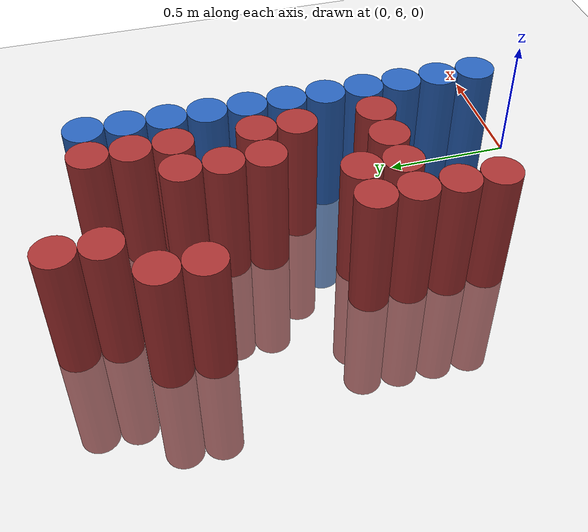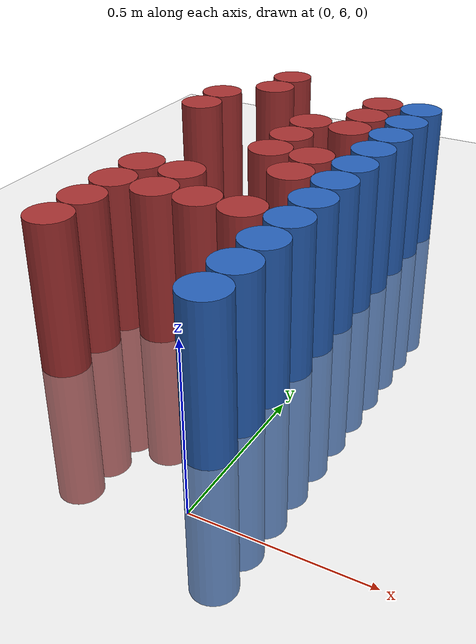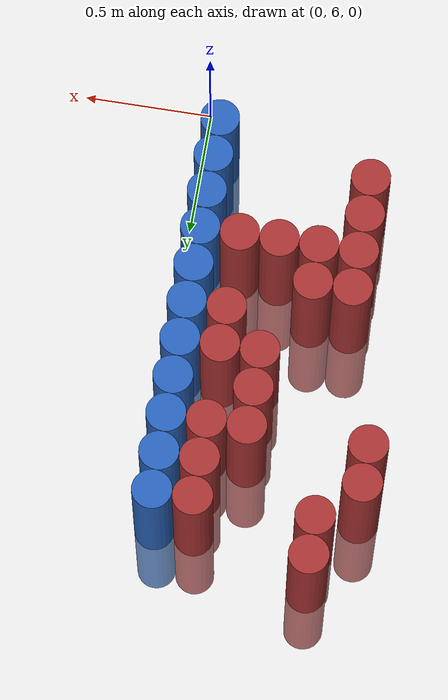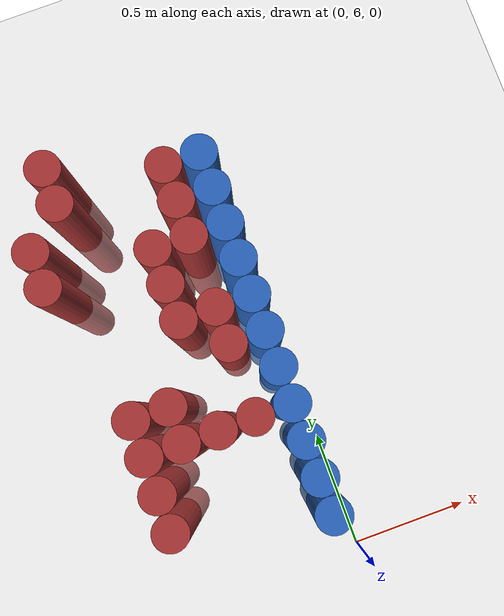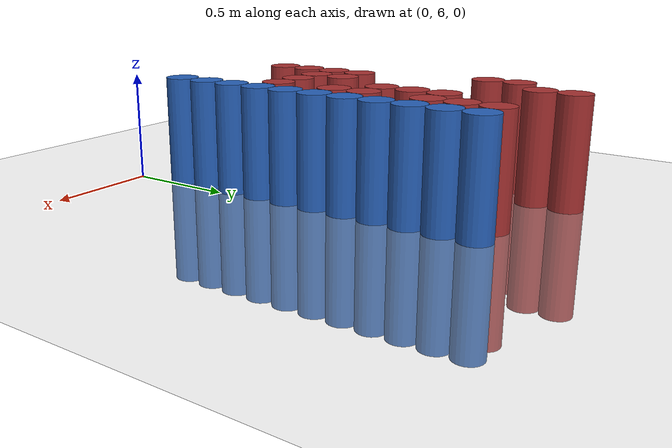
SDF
<sdf version="1.6">
 <world name="default">
  <model name="ground_plane">
   <static>1</static>
   <link name="link">
    <collision name="collision">
     <geometry><plane><normal>0 0 1</normal><size>100 100</size></plane></geometry>
     <surface><friction><ode><mu>100</mu><mu2>50</mu2></ode></friction></surface>
    </collision>
    <visual name="visual">
     <cast_shadows>0</cast_shadows>
     <geometry><plane><normal>0 0 1</normal><size>100 100</size></plane></geometry>
     <material>
      <script><uri>file://media/materials/scripts/gazebo.material</uri><name>Gazebo/Grey</name></script>
     </material>
    </visual>
   </link>
  </model>
  <model name="unit_cylinder_279">
   <static>1</static>
   <pose>-0.825000 7.425000 0.000000 0.000000 0.000000 0.000000</pose>
   <link name="link">
    <inertial>
     <mass>1</mass>
     <inertia><ixx>0.145833</ixx><ixy>0</ixy><ixz>0</ixz><iyy>0.145833</iyy><iyz>0</iyz><izz>0.125</izz></inertia>
    </inertial>
    <collision name="collision">
     <geometry><cylinder><radius>0.075000</radius><length>1</length></cylinder></geometry>
    </collision>
    <visual name="visual">
     <geometry><cylinder><radius>0.075000</radius><length>1</length></cylinder></geometry>
     <material>
      <ambient>0.648000 0.192000 0.192000 1</ambient>
      <diffuse>0.648000 0.192000 0.192000 1</diffuse>
     </material>
     <material>
      <script><name>Gazebo/Grey</name><uri>file://media/materials/scripts/gazebo.material</uri></script>
     </material>
    </visual>
    <sensor name="sensor_contact" type="contact"><contact><collision>collision</collision></contact></sensor>
   </link>
   <plugin filename="gz-sim-touchplugin-system" name="gz::sim::systems::TouchPlugin">
    <target>robot</target>
    <namespace>robot</namespace>
    <time>0.001</time>
    <enabled>true</enabled>
   </plugin>
  </model>
  <model name="unit_cylinder_280">
   <static>1</static>
   <pose>-0.825000 7.575000 0.000000 0.000000 0.000000 0.000000</pose>
   <link name="link">
    <inertial>
     <mass>1</mass>
     <inertia><ixx>0.145833</ixx><ixy>0</ixy><ixz>0</ixz><iyy>0.145833</iyy><iyz>0</iyz><izz>0.125</izz></inertia>
    </inertial>
    <collision name="collision">
     <geometry><cylinder><radius>0.075000</radius><length>1</length></cylinder></geometry>
    </collision>
    <visual name="visual">
     <geometry><cylinder><radius>0.075000</radius><length>1</length></cylinder></geometry>
     <material>
      <ambient>0.648000 0.192000 0.192000 1</ambient>
      <diffuse>0.648000 0.192000 0.192000 1</diffuse>
     </material>
     <material>
      <script><name>Gazebo/Grey</name><uri>file://media/materials/scripts/gazebo.material</uri></script>
     </material>
    </visual>
    <sensor name="sensor_contact" type="contact"><contact><collision>collision</collision></contact></sensor>
   </link>
   <plugin filename="gz-sim-touchplugin-system" name="gz::sim::systems::TouchPlugin">
    <target>robot</target>
    <namespace>robot</namespace>
    <time>0.001</time>
    <enabled>true</enabled>
   </plugin>
  </model>
  <model name="unit_cylinder_283">
   <static>1</static>
   <pose>-0.675000 6.375000 0.000000 0.000000 0.000000 0.000000</pose>
   <link name="link">
    <inertial>
     <mass>1</mass>
     <inertia><ixx>0.145833</ixx><ixy>0</ixy><ixz>0</ixz><iyy>0.145833</iyy><iyz>0</iyz><izz>0.125</izz></inertia>
    </inertial>
    <collision name="collision">
     <geometry><cylinder><radius>0.075000</radius><length>1</length></cylinder></geometry>
    </collision>
    <visual name="visual">
     <geometry><cylinder><radius>0.075000</radius><length>1</length></cylinder></geometry>
     <material>
      <ambient>0.648000 0.192000 0.192000 1</ambient>
      <diffuse>0.648000 0.192000 0.192000 1</diffuse>
     </material>
     <material>
      <script><name>Gazebo/Grey</name><uri>file://media/materials/scripts/gazebo.material</uri></script>
     </material>
    </visual>
    <sensor name="sensor_contact" type="contact"><contact><collision>collision</collision></contact></sensor>
   </link>
   <plugin filename="gz-sim-touchplugin-system" name="gz::sim::systems::TouchPlugin">
    <target>robot</target>
    <namespace>robot</namespace>
    <time>0.001</time>
    <enabled>true</enabled>
   </plugin>
  </model>
  <model name="unit_cylinder_284">
   <static>1</static>
   <pose>-0.675000 6.525000 0.000000 0.000000 0.000000 0.000000</pose>
   <link name="link">
    <inertial>
     <mass>1</mass>
     <inertia><ixx>0.145833</ixx><ixy>0</ixy><ixz>0</ixz><iyy>0.145833</iyy><iyz>0</iyz><izz>0.125</izz></inertia>
    </inertial>
    <collision name="collision">
     <geometry><cylinder><radius>0.075000</radius><length>1</length></cylinder></geometry>
    </collision>
    <visual name="visual">
     <geometry><cylinder><radius>0.075000</radius><length>1</length></cylinder></geometry>
     <material>
      <ambient>0.648000 0.192000 0.192000 1</ambient>
      <diffuse>0.648000 0.192000 0.192000 1</diffuse>
     </material>
     <material>
      <script><name>Gazebo/Grey</name><uri>file://media/materials/scripts/gazebo.material</uri></script>
     </material>
    </visual>
    <sensor name="sensor_contact" type="contact"><contact><collision>collision</collision></contact></sensor>
   </link>
   <plugin filename="gz-sim-touchplugin-system" name="gz::sim::systems::TouchPlugin">
    <target>robot</target>
    <namespace>robot</namespace>
    <time>0.001</time>
    <enabled>true</enabled>
   </plugin>
  </model>
  <model name="unit_cylinder_285">
   <static>1</static>
   <pose>-0.675000 6.675000 0.000000 0.000000 0.000000 0.000000</pose>
   <link name="link">
    <inertial>
     <mass>1</mass>
     <inertia><ixx>0.145833</ixx><ixy>0</ixy><ixz>0</ixz><iyy>0.145833</iyy><iyz>0</iyz><izz>0.125</izz></inertia>
    </inertial>
    <collision name="collision">
     <geometry><cylinder><radius>0.075000</radius><length>1</length></cylinder></geometry>
    </collision>
    <visual name="visual">
     <geometry><cylinder><radius>0.075000</radius><length>1</length></cylinder></geometry>
     <material>
      <ambient>0.648000 0.192000 0.192000 1</ambient>
      <diffuse>0.648000 0.192000 0.192000 1</diffuse>
     </material>
     <material>
      <script><name>Gazebo/Grey</name><uri>file://media/materials/scripts/gazebo.material</uri></script>
     </material>
    </visual>
    <sensor name="sensor_contact" type="contact"><contact><collision>collision</collision></contact></sensor>
   </link>
   <plugin filename="gz-sim-touchplugin-system" name="gz::sim::systems::TouchPlugin">
    <target>robot</target>
    <namespace>robot</namespace>
    <time>0.001</time>
    <enabled>true</enabled>
   </plugin>
  </model>
  <model name="unit_cylinder_286">
   <static>1</static>
   <pose>-0.675000 6.825000 0.000000 0.000000 0.000000 0.000000</pose>
   <link name="link">
    <inertial>
     <mass>1</mass>
     <inertia><ixx>0.145833</ixx><ixy>0</ixy><ixz>0</ixz><iyy>0.145833</iyy><iyz>0</iyz><izz>0.125</izz></inertia>
    </inertial>
    <collision name="collision">
     <geometry><cylinder><radius>0.075000</radius><length>1</length></cylinder></geometry>
    </collision>
    <visual name="visual">
     <geometry><cylinder><radius>0.075000</radius><length>1</length></cylinder></geometry>
     <material>
      <ambient>0.648000 0.192000 0.192000 1</ambient>
      <diffuse>0.648000 0.192000 0.192000 1</diffuse>
     </material>
     <material>
      <script><name>Gazebo/Grey</name><uri>file://media/materials/scripts/gazebo.material</uri></script>
     </material>
    </visual>
    <sensor name="sensor_contact" type="contact"><contact><collision>collision</collision></contact></sensor>
   </link>
   <plugin filename="gz-sim-touchplugin-system" name="gz::sim::systems::TouchPlugin">
    <target>robot</target>
    <namespace>robot</namespace>
    <time>0.001</time>
    <enabled>true</enabled>
   </plugin>
  </model>
  <model name="unit_cylinder_287">
   <static>1</static>
   <pose>-0.675000 7.725000 0.000000 0.000000 0.000000 0.000000</pose>
   <link name="link">
    <inertial>
     <mass>1</mass>
     <inertia><ixx>0.145833</ixx><ixy>0</ixy><ixz>0</ixz><iyy>0.145833</iyy><iyz>0</iyz><izz>0.125</izz></inertia>
    </inertial>
    <collision name="collision">
     <geometry><cylinder><radius>0.075000</radius><length>1</length></cylinder></geometry>
    </collision>
    <visual name="visual">
     <geometry><cylinder><radius>0.075000</radius><length>1</length></cylinder></geometry>
     <material>
      <ambient>0.648000 0.192000 0.192000 1</ambient>
      <diffuse>0.648000 0.192000 0.192000 1</diffuse>
     </material>
     <material>
      <script><name>Gazebo/Grey</name><uri>file://media/materials/scripts/gazebo.material</uri></script>
     </material>
    </visual>
    <sensor name="sensor_contact" type="contact"><contact><collision>collision</collision></contact></sensor>
   </link>
   <plugin filename="gz-sim-touchplugin-system" name="gz::sim::systems::TouchPlugin">
    <target>robot</target>
    <namespace>robot</namespace>
    <time>0.001</time>
    <enabled>true</enabled>
   </plugin>
  </model>
  <model name="unit_cylinder_288">
   <static>1</static>
   <pose>-0.675000 7.875000 0.000000 0.000000 0.000000 0.000000</pose>
   <link name="link">
    <inertial>
     <mass>1</mass>
     <inertia><ixx>0.145833</ixx><ixy>0</ixy><ixz>0</ixz><iyy>0.145833</iyy><iyz>0</iyz><izz>0.125</izz></inertia>
    </inertial>
    <collision name="collision">
     <geometry><cylinder><radius>0.075000</radius><length>1</length></cylinder></geometry>
    </collision>
    <visual name="visual">
     <geometry><cylinder><radius>0.075000</radius><length>1</length></cylinder></geometry>
     <material>
      <ambient>0.648000 0.192000 0.192000 1</ambient>
      <diffuse>0.648000 0.192000 0.192000 1</diffuse>
     </material>
     <material>
      <script><name>Gazebo/Grey</name><uri>file://media/materials/scripts/gazebo.material</uri></script>
     </material>
    </visual>
    <sensor name="sensor_contact" type="contact"><contact><collision>collision</collision></contact></sensor>
   </link>
   <plugin filename="gz-sim-touchplugin-system" name="gz::sim::systems::TouchPlugin">
    <target>robot</target>
    <namespace>robot</namespace>
    <time>0.001</time>
    <enabled>true</enabled>
   </plugin>
  </model>
  <model name="unit_cylinder_295">
   <static>1</static>
   <pose>-0.525000 6.675000 0.000000 0.000000 0.000000 0.000000</pose>
   <link name="link">
    <inertial>
     <mass>1</mass>
     <inertia><ixx>0.145833</ixx><ixy>0</ixy><ixz>0</ixz><iyy>0.145833</iyy><iyz>0</iyz><izz>0.125</izz></inertia>
    </inertial>
    <collision name="collision">
     <geometry><cylinder><radius>0.075000</radius><length>1</length></cylinder></geometry>
    </collision>
    <visual name="visual">
     <geometry><cylinder><radius>0.075000</radius><length>1</length></cylinder></geometry>
     <material>
      <ambient>0.648000 0.192000 0.192000 1</ambient>
      <diffuse>0.648000 0.192000 0.192000 1</diffuse>
     </material>
     <material>
      <script><name>Gazebo/Grey</name><uri>file://media/materials/scripts/gazebo.material</uri></script>
     </material>
    </visual>
    <sensor name="sensor_contact" type="contact"><contact><collision>collision</collision></contact></sensor>
   </link>
   <plugin filename="gz-sim-touchplugin-system" name="gz::sim::systems::TouchPlugin">
    <target>robot</target>
    <namespace>robot</namespace>
    <time>0.001</time>
    <enabled>true</enabled>
   </plugin>
  </model>
  <model name="unit_cylinder_296">
   <static>1</static>
   <pose>-0.525000 6.825000 0.000000 0.000000 0.000000 0.000000</pose>
   <link name="link">
    <inertial>
     <mass>1</mass>
     <inertia><ixx>0.145833</ixx><ixy>0</ixy><ixz>0</ixz><iyy>0.145833</iyy><iyz>0</iyz><izz>0.125</izz></inertia>
    </inertial>
    <collision name="collision">
     <geometry><cylinder><radius>0.075000</radius><length>1</length></cylinder></geometry>
    </collision>
    <visual name="visual">
     <geometry><cylinder><radius>0.075000</radius><length>1</length></cylinder></geometry>
     <material>
      <ambient>0.648000 0.192000 0.192000 1</ambient>
      <diffuse>0.648000 0.192000 0.192000 1</diffuse>
     </material>
     <material>
      <script><name>Gazebo/Grey</name><uri>file://media/materials/scripts/gazebo.material</uri></script>
     </material>
    </visual>
    <sensor name="sensor_contact" type="contact"><contact><collision>collision</collision></contact></sensor>
   </link>
   <plugin filename="gz-sim-touchplugin-system" name="gz::sim::systems::TouchPlugin">
    <target>robot</target>
    <namespace>robot</namespace>
    <time>0.001</time>
    <enabled>true</enabled>
   </plugin>
  </model>
  <model name="unit_cylinder_309">
   <static>1</static>
   <pose>-0.375000 6.675000 0.000000 0.000000 0.000000 0.000000</pose>
   <link name="link">
    <inertial>
     <mass>1</mass>
     <inertia><ixx>0.145833</ixx><ixy>0</ixy><ixz>0</ixz><iyy>0.145833</iyy><iyz>0</iyz><izz>0.125</izz></inertia>
    </inertial>
    <collision name="collision">
     <geometry><cylinder><radius>0.075000</radius><length>1</length></cylinder></geometry>
    </collision>
    <visual name="visual">
     <geometry><cylinder><radius>0.075000</radius><length>1</length></cylinder></geometry>
     <material>
      <ambient>0.648000 0.192000 0.192000 1</ambient>
      <diffuse>0.648000 0.192000 0.192000 1</diffuse>
     </material>
     <material>
      <script><name>Gazebo/Grey</name><uri>file://media/materials/scripts/gazebo.material</uri></script>
     </material>
    </visual>
    <sensor name="sensor_contact" type="contact"><contact><collision>collision</collision></contact></sensor>
   </link>
   <plugin filename="gz-sim-touchplugin-system" name="gz::sim::systems::TouchPlugin">
    <target>robot</target>
    <namespace>robot</namespace>
    <time>0.001</time>
    <enabled>true</enabled>
   </plugin>
  </model>
  <model name="unit_cylinder_310">
   <static>1</static>
   <pose>-0.375000 7.125000 0.000000 0.000000 0.000000 0.000000</pose>
   <link name="link">
    <inertial>
     <mass>1</mass>
     <inertia><ixx>0.145833</ixx><ixy>0</ixy><ixz>0</ixz><iyy>0.145833</iyy><iyz>0</iyz><izz>0.125</izz></inertia>
    </inertial>
    <collision name="collision">
     <geometry><cylinder><radius>0.075000</radius><length>1</length></cylinder></geometry>
    </collision>
    <visual name="visual">
     <geometry><cylinder><radius>0.075000</radius><length>1</length></cylinder></geometry>
     <material>
      <ambient>0.648000 0.192000 0.192000 1</ambient>
      <diffuse>0.648000 0.192000 0.192000 1</diffuse>
     </material>
     <material>
      <script><name>Gazebo/Grey</name><uri>file://media/materials/scripts/gazebo.material</uri></script>
     </material>
    </visual>
    <sensor name="sensor_contact" type="contact"><contact><collision>collision</collision></contact></sensor>
   </link>
   <plugin filename="gz-sim-touchplugin-system" name="gz::sim::systems::TouchPlugin">
    <target>robot</target>
    <namespace>robot</namespace>
    <time>0.001</time>
    <enabled>true</enabled>
   </plugin>
  </model>
  <model name="unit_cylinder_311">
   <static>1</static>
   <pose>-0.375000 7.275000 0.000000 0.000000 0.000000 0.000000</pose>
   <link name="link">
    <inertial>
     <mass>1</mass>
     <inertia><ixx>0.145833</ixx><ixy>0</ixy><ixz>0</ixz><iyy>0.145833</iyy><iyz>0</iyz><izz>0.125</izz></inertia>
    </inertial>
    <collision name="collision">
     <geometry><cylinder><radius>0.075000</radius><length>1</length></cylinder></geometry>
    </collision>
    <visual name="visual">
     <geometry><cylinder><radius>0.075000</radius><length>1</length></cylinder></geometry>
     <material>
      <ambient>0.648000 0.192000 0.192000 1</ambient>
      <diffuse>0.648000 0.192000 0.192000 1</diffuse>
     </material>
     <material>
      <script><name>Gazebo/Grey</name><uri>file://media/materials/scripts/gazebo.material</uri></script>
     </material>
    </visual>
    <sensor name="sensor_contact" type="contact"><contact><collision>collision</collision></contact></sensor>
   </link>
   <plugin filename="gz-sim-touchplugin-system" name="gz::sim::systems::TouchPlugin">
    <target>robot</target>
    <namespace>robot</namespace>
    <time>0.001</time>
    <enabled>true</enabled>
   </plugin>
  </model>
  <model name="unit_cylinder_312">
   <static>1</static>
   <pose>-0.375000 7.425000 0.000000 0.000000 0.000000 0.000000</pose>
   <link name="link">
    <inertial>
     <mass>1</mass>
     <inertia><ixx>0.145833</ixx><ixy>0</ixy><ixz>0</ixz><iyy>0.145833</iyy><iyz>0</iyz><izz>0.125</izz></inertia>
    </inertial>
    <collision name="collision">
     <geometry><cylinder><radius>0.075000</radius><length>1</length></cylinder></geometry>
    </collision>
    <visual name="visual">
     <geometry><cylinder><radius>0.075000</radius><length>1</length></cylinder></geometry>
     <material>
      <ambient>0.648000 0.192000 0.192000 1</ambient>
      <diffuse>0.648000 0.192000 0.192000 1</diffuse>
     </material>
     <material>
      <script><name>Gazebo/Grey</name><uri>file://media/materials/scripts/gazebo.material</uri></script>
     </material>
    </visual>
    <sensor name="sensor_contact" type="contact"><contact><collision>collision</collision></contact></sensor>
   </link>
   <plugin filename="gz-sim-touchplugin-system" name="gz::sim::systems::TouchPlugin">
    <target>robot</target>
    <namespace>robot</namespace>
    <time>0.001</time>
    <enabled>true</enabled>
   </plugin>
  </model>
  <model name="unit_cylinder_326">
   <static>1</static>
   <pose>-0.225000 6.675000 0.000000 0.000000 0.000000 0.000000</pose>
   <link name="link">
    <inertial>
     <mass>1</mass>
     <inertia><ixx>0.145833</ixx><ixy>0</ixy><ixz>0</ixz><iyy>0.145833</iyy><iyz>0</iyz><izz>0.125</izz></inertia>
    </inertial>
    <collision name="collision">
     <geometry><cylinder><radius>0.075000</radius><length>1</length></cylinder></geometry>
    </collision>
    <visual name="visual">
     <geometry><cylinder><radius>0.075000</radius><length>1</length></cylinder></geometry>
     <material>
      <ambient>0.648000 0.192000 0.192000 1</ambient>
      <diffuse>0.648000 0.192000 0.192000 1</diffuse>
     </material>
     <material>
      <script><name>Gazebo/Grey</name><uri>file://media/materials/scripts/gazebo.material</uri></script>
     </material>
    </visual>
    <sensor name="sensor_contact" type="contact"><contact><collision>collision</collision></contact></sensor>
   </link>
   <plugin filename="gz-sim-touchplugin-system" name="gz::sim::systems::TouchPlugin">
    <target>robot</target>
    <namespace>robot</namespace>
    <time>0.001</time>
    <enabled>true</enabled>
   </plugin>
  </model>
  <model name="unit_cylinder_327">
   <static>1</static>
   <pose>-0.225000 6.975000 0.000000 0.000000 0.000000 0.000000</pose>
   <link name="link">
    <inertial>
     <mass>1</mass>
     <inertia><ixx>0.145833</ixx><ixy>0</ixy><ixz>0</ixz><iyy>0.145833</iyy><iyz>0</iyz><izz>0.125</izz></inertia>
    </inertial>
    <collision name="collision">
     <geometry><cylinder><radius>0.075000</radius><length>1</length></cylinder></geometry>
    </collision>
    <visual name="visual">
     <geometry><cylinder><radius>0.075000</radius><length>1</length></cylinder></geometry>
     <material>
      <ambient>0.648000 0.192000 0.192000 1</ambient>
      <diffuse>0.648000 0.192000 0.192000 1</diffuse>
     </material>
     <material>
      <script><name>Gazebo/Grey</name><uri>file://media/materials/scripts/gazebo.material</uri></script>
     </material>
    </visual>
    <sensor name="sensor_contact" type="contact"><contact><collision>collision</collision></contact></sensor>
   </link>
   <plugin filename="gz-sim-touchplugin-system" name="gz::sim::systems::TouchPlugin">
    <target>robot</target>
    <namespace>robot</namespace>
    <time>0.001</time>
    <enabled>true</enabled>
   </plugin>
  </model>
  <model name="unit_cylinder_328">
   <static>1</static>
   <pose>-0.225000 7.125000 0.000000 0.000000 0.000000 0.000000</pose>
   <link name="link">
    <inertial>
     <mass>1</mass>
     <inertia><ixx>0.145833</ixx><ixy>0</ixy><ixz>0</ixz><iyy>0.145833</iyy><iyz>0</iyz><izz>0.125</izz></inertia>
    </inertial>
    <collision name="collision">
     <geometry><cylinder><radius>0.075000</radius><length>1</length></cylinder></geometry>
    </collision>
    <visual name="visual">
     <geometry><cylinder><radius>0.075000</radius><length>1</length></cylinder></geometry>
     <material>
      <ambient>0.648000 0.192000 0.192000 1</ambient>
      <diffuse>0.648000 0.192000 0.192000 1</diffuse>
     </material>
     <material>
      <script><name>Gazebo/Grey</name><uri>file://media/materials/scripts/gazebo.material</uri></script>
     </material>
    </visual>
    <sensor name="sensor_contact" type="contact"><contact><collision>collision</collision></contact></sensor>
   </link>
   <plugin filename="gz-sim-touchplugin-system" name="gz::sim::systems::TouchPlugin">
    <target>robot</target>
    <namespace>robot</namespace>
    <time>0.001</time>
    <enabled>true</enabled>
   </plugin>
  </model>
  <model name="unit_cylinder_329">
   <static>1</static>
   <pose>-0.225000 7.425000 0.000000 0.000000 0.000000 0.000000</pose>
   <link name="link">
    <inertial>
     <mass>1</mass>
     <inertia><ixx>0.145833</ixx><ixy>0</ixy><ixz>0</ixz><iyy>0.145833</iyy><iyz>0</iyz><izz>0.125</izz></inertia>
    </inertial>
    <collision name="collision">
     <geometry><cylinder><radius>0.075000</radius><length>1</length></cylinder></geometry>
    </collision>
    <visual name="visual">
     <geometry><cylinder><radius>0.075000</radius><length>1</length></cylinder></geometry>
     <material>
      <ambient>0.648000 0.192000 0.192000 1</ambient>
      <diffuse>0.648000 0.192000 0.192000 1</diffuse>
     </material>
     <material>
      <script><name>Gazebo/Grey</name><uri>file://media/materials/scripts/gazebo.material</uri></script>
     </material>
    </visual>
    <sensor name="sensor_contact" type="contact"><contact><collision>collision</collision></contact></sensor>
   </link>
   <plugin filename="gz-sim-touchplugin-system" name="gz::sim::systems::TouchPlugin">
    <target>robot</target>
    <namespace>robot</namespace>
    <time>0.001</time>
    <enabled>true</enabled>
   </plugin>
  </model>
  <model name="unit_cylinder_330">
   <static>1</static>
   <pose>-0.225000 7.575000 0.000000 0.000000 0.000000 0.000000</pose>
   <link name="link">
    <inertial>
     <mass>1</mass>
     <inertia><ixx>0.145833</ixx><ixy>0</ixy><ixz>0</ixz><iyy>0.145833</iyy><iyz>0</iyz><izz>0.125</izz></inertia>
    </inertial>
    <collision name="collision">
     <geometry><cylinder><radius>0.075000</radius><length>1</length></cylinder></geometry>
    </collision>
    <visual name="visual">
     <geometry><cylinder><radius>0.075000</radius><length>1</length></cylinder></geometry>
     <material>
      <ambient>0.648000 0.192000 0.192000 1</ambient>
      <diffuse>0.648000 0.192000 0.192000 1</diffuse>
     </material>
     <material>
      <script><name>Gazebo/Grey</name><uri>file://media/materials/scripts/gazebo.material</uri></script>
     </material>
    </visual>
    <sensor name="sensor_contact" type="contact"><contact><collision>collision</collision></contact></sensor>
   </link>
   <plugin filename="gz-sim-touchplugin-system" name="gz::sim::systems::TouchPlugin">
    <target>robot</target>
    <namespace>robot</namespace>
    <time>0.001</time>
    <enabled>true</enabled>
   </plugin>
  </model>
  <model name="unit_cylinder_331">
   <static>1</static>
   <pose>-0.225000 7.725000 0.000000 0.000000 0.000000 0.000000</pose>
   <link name="link">
    <inertial>
     <mass>1</mass>
     <inertia><ixx>0.145833</ixx><ixy>0</ixy><ixz>0</ixz><iyy>0.145833</iyy><iyz>0</iyz><izz>0.125</izz></inertia>
    </inertial>
    <collision name="collision">
     <geometry><cylinder><radius>0.075000</radius><length>1</length></cylinder></geometry>
    </collision>
    <visual name="visual">
     <geometry><cylinder><radius>0.075000</radius><length>1</length></cylinder></geometry>
     <material>
      <ambient>0.648000 0.192000 0.192000 1</ambient>
      <diffuse>0.648000 0.192000 0.192000 1</diffuse>
     </material>
     <material>
      <script><name>Gazebo/Grey</name><uri>file://media/materials/scripts/gazebo.material</uri></script>
     </material>
    </visual>
    <sensor name="sensor_contact" type="contact"><contact><collision>collision</collision></contact></sensor>
   </link>
   <plugin filename="gz-sim-touchplugin-system" name="gz::sim::systems::TouchPlugin">
    <target>robot</target>
    <namespace>robot</namespace>
    <time>0.001</time>
    <enabled>true</enabled>
   </plugin>
  </model>
  <model name="unit_cylinder_342">
   <static>1</static>
   <pose>-0.075000 6.225000 0.000000 0.000000 0.000000 0.000000</pose>
   <link name="link">
    <inertial>
     <mass>1</mass>
     <inertia><ixx>0.145833</ixx><ixy>0</ixy><ixz>0</ixz><iyy>0.145833</iyy><iyz>0</iyz><izz>0.125</izz></inertia>
    </inertial>
    <collision name="collision">
     <geometry><cylinder><radius>0.075000</radius><length>1</length></cylinder></geometry>
    </collision>
    <visual name="visual">
     <geometry><cylinder><radius>0.075000</radius><length>1</length></cylinder></geometry>
     <material>
      <ambient>0.152000 0.379000 0.720000 1</ambient>
      <diffuse>0.152000 0.379000 0.720000 1</diffuse>
     </material>
     <material>
      <script><name>Gazebo/Grey</name><uri>file://media/materials/scripts/gazebo.material</uri></script>
     </material>
    </visual>
    <sensor name="sensor_contact" type="contact"><contact><collision>collision</collision></contact></sensor>
   </link>
   <plugin filename="gz-sim-touchplugin-system" name="gz::sim::systems::TouchPlugin">
    <target>robot</target>
    <namespace>robot</namespace>
    <time>0.001</time>
    <enabled>true</enabled>
   </plugin>
  </model>
  <model name="unit_cylinder_343">
   <static>1</static>
   <pose>-0.075000 6.375000 0.000000 0.000000 0.000000 0.000000</pose>
   <link name="link">
    <inertial>
     <mass>1</mass>
     <inertia><ixx>0.145833</ixx><ixy>0</ixy><ixz>0</ixz><iyy>0.145833</iyy><iyz>0</iyz><izz>0.125</izz></inertia>
    </inertial>
    <collision name="collision">
     <geometry><cylinder><radius>0.075000</radius><length>1</length></cylinder></geometry>
    </collision>
    <visual name="visual">
     <geometry><cylinder><radius>0.075000</radius><length>1</length></cylinder></geometry>
     <material>
      <ambient>0.152000 0.379000 0.720000 1</ambient>
      <diffuse>0.152000 0.379000 0.720000 1</diffuse>
     </material>
     <material>
      <script><name>Gazebo/Grey</name><uri>file://media/materials/scripts/gazebo.material</uri></script>
     </material>
    </visual>
    <sensor name="sensor_contact" type="contact"><contact><collision>collision</collision></contact></sensor>
   </link>
   <plugin filename="gz-sim-touchplugin-system" name="gz::sim::systems::TouchPlugin">
    <target>robot</target>
    <namespace>robot</namespace>
    <time>0.001</time>
    <enabled>true</enabled>
   </plugin>
  </model>
  <model name="unit_cylinder_344">
   <static>1</static>
   <pose>-0.075000 6.525000 0.000000 0.000000 0.000000 0.000000</pose>
   <link name="link">
    <inertial>
     <mass>1</mass>
     <inertia><ixx>0.145833</ixx><ixy>0</ixy><ixz>0</ixz><iyy>0.145833</iyy><iyz>0</iyz><izz>0.125</izz></inertia>
    </inertial>
    <collision name="collision">
     <geometry><cylinder><radius>0.075000</radius><length>1</length></cylinder></geometry>
    </collision>
    <visual name="visual">
     <geometry><cylinder><radius>0.075000</radius><length>1</length></cylinder></geometry>
     <material>
      <ambient>0.152000 0.379000 0.720000 1</ambient>
      <diffuse>0.152000 0.379000 0.720000 1</diffuse>
     </material>
     <material>
      <script><name>Gazebo/Grey</name><uri>file://media/materials/scripts/gazebo.material</uri></script>
     </material>
    </visual>
    <sensor name="sensor_contact" type="contact"><contact><collision>collision</collision></contact></sensor>
   </link>
   <plugin filename="gz-sim-touchplugin-system" name="gz::sim::systems::TouchPlugin">
    <target>robot</target>
    <namespace>robot</namespace>
    <time>0.001</time>
    <enabled>true</enabled>
   </plugin>
  </model>
  <model name="unit_cylinder_345">
   <static>1</static>
   <pose>-0.075000 6.675000 0.000000 0.000000 0.000000 0.000000</pose>
   <link name="link">
    <inertial>
     <mass>1</mass>
     <inertia><ixx>0.145833</ixx><ixy>0</ixy><ixz>0</ixz><iyy>0.145833</iyy><iyz>0</iyz><izz>0.125</izz></inertia>
    </inertial>
    <collision name="collision">
     <geometry><cylinder><radius>0.075000</radius><length>1</length></cylinder></geometry>
    </collision>
    <visual name="visual">
     <geometry><cylinder><radius>0.075000</radius><length>1</length></cylinder></geometry>
     <material>
      <ambient>0.152000 0.379000 0.720000 1</ambient>
      <diffuse>0.152000 0.379000 0.720000 1</diffuse>
     </material>
     <material>
      <script><name>Gazebo/Grey</name><uri>file://media/materials/scripts/gazebo.material</uri></script>
     </material>
    </visual>
    <sensor name="sensor_contact" type="contact"><contact><collision>collision</collision></contact></sensor>
   </link>
   <plugin filename="gz-sim-touchplugin-system" name="gz::sim::systems::TouchPlugin">
    <target>robot</target>
    <namespace>robot</namespace>
    <time>0.001</time>
    <enabled>true</enabled>
   </plugin>
  </model>
  <model name="unit_cylinder_346">
   <static>1</static>
   <pose>-0.075000 6.825000 0.000000 0.000000 0.000000 0.000000</pose>
   <link name="link">
    <inertial>
     <mass>1</mass>
     <inertia><ixx>0.145833</ixx><ixy>0</ixy><ixz>0</ixz><iyy>0.145833</iyy><iyz>0</iyz><izz>0.125</izz></inertia>
    </inertial>
    <collision name="collision">
     <geometry><cylinder><radius>0.075000</radius><length>1</length></cylinder></geometry>
    </collision>
    <visual name="visual">
     <geometry><cylinder><radius>0.075000</radius><length>1</length></cylinder></geometry>
     <material>
      <ambient>0.152000 0.379000 0.720000 1</ambient>
      <diffuse>0.152000 0.379000 0.720000 1</diffuse>
     </material>
     <material>
      <script><name>Gazebo/Grey</name><uri>file://media/materials/scripts/gazebo.material</uri></script>
     </material>
    </visual>
    <sensor name="sensor_contact" type="contact"><contact><collision>collision</collision></contact></sensor>
   </link>
   <plugin filename="gz-sim-touchplugin-system" name="gz::sim::systems::TouchPlugin">
    <target>robot</target>
    <namespace>robot</namespace>
    <time>0.001</time>
    <enabled>true</enabled>
   </plugin>
  </model>
  <model name="unit_cylinder_347">
   <static>1</static>
   <pose>-0.075000 6.975000 0.000000 0.000000 0.000000 0.000000</pose>
   <link name="link">
    <inertial>
     <mass>1</mass>
     <inertia><ixx>0.145833</ixx><ixy>0</ixy><ixz>0</ixz><iyy>0.145833</iyy><iyz>0</iyz><izz>0.125</izz></inertia>
    </inertial>
    <collision name="collision">
     <geometry><cylinder><radius>0.075000</radius><length>1</length></cylinder></geometry>
    </collision>
    <visual name="visual">
     <geometry><cylinder><radius>0.075000</radius><length>1</length></cylinder></geometry>
     <material>
      <ambient>0.152000 0.379000 0.720000 1</ambient>
      <diffuse>0.152000 0.379000 0.720000 1</diffuse>
     </material>
     <material>
      <script><name>Gazebo/Grey</name><uri>file://media/materials/scripts/gazebo.material</uri></script>
     </material>
    </visual>
    <sensor name="sensor_contact" type="contact"><contact><collision>collision</collision></contact></sensor>
   </link>
   <plugin filename="gz-sim-touchplugin-system" name="gz::sim::systems::TouchPlugin">
    <target>robot</target>
    <namespace>robot</namespace>
    <time>0.001</time>
    <enabled>true</enabled>
   </plugin>
  </model>
  <model name="unit_cylinder_348">
   <static>1</static>
   <pose>-0.075000 7.125000 0.000000 0.000000 0.000000 0.000000</pose>
   <link name="link">
    <inertial>
     <mass>1</mass>
     <inertia><ixx>0.145833</ixx><ixy>0</ixy><ixz>0</ixz><iyy>0.145833</iyy><iyz>0</iyz><izz>0.125</izz></inertia>
    </inertial>
    <collision name="collision">
     <geometry><cylinder><radius>0.075000</radius><length>1</length></cylinder></geometry>
    </collision>
    <visual name="visual">
     <geometry><cylinder><radius>0.075000</radius><length>1</length></cylinder></geometry>
     <material>
      <ambient>0.152000 0.379000 0.720000 1</ambient>
      <diffuse>0.152000 0.379000 0.720000 1</diffuse>
     </material>
     <material>
      <script><name>Gazebo/Grey</name><uri>file://media/materials/scripts/gazebo.material</uri></script>
     </material>
    </visual>
    <sensor name="sensor_contact" type="contact"><contact><collision>collision</collision></contact></sensor>
   </link>
   <plugin filename="gz-sim-touchplugin-system" name="gz::sim::systems::TouchPlugin">
    <target>robot</target>
    <namespace>robot</namespace>
    <time>0.001</time>
    <enabled>true</enabled>
   </plugin>
  </model>
  <model name="unit_cylinder_349">
   <static>1</static>
   <pose>-0.075000 7.275000 0.000000 0.000000 0.000000 0.000000</pose>
   <link name="link">
    <inertial>
     <mass>1</mass>
     <inertia><ixx>0.145833</ixx><ixy>0</ixy><ixz>0</ixz><iyy>0.145833</iyy><iyz>0</iyz><izz>0.125</izz></inertia>
    </inertial>
    <collision name="collision">
     <geometry><cylinder><radius>0.075000</radius><length>1</length></cylinder></geometry>
    </collision>
    <visual name="visual">
     <geometry><cylinder><radius>0.075000</radius><length>1</length></cylinder></geometry>
     <material>
      <ambient>0.152000 0.379000 0.720000 1</ambient>
      <diffuse>0.152000 0.379000 0.720000 1</diffuse>
     </material>
     <material>
      <script><name>Gazebo/Grey</name><uri>file://media/materials/scripts/gazebo.material</uri></script>
     </material>
    </visual>
    <sensor name="sensor_contact" type="contact"><contact><collision>collision</collision></contact></sensor>
   </link>
   <plugin filename="gz-sim-touchplugin-system" name="gz::sim::systems::TouchPlugin">
    <target>robot</target>
    <namespace>robot</namespace>
    <time>0.001</time>
    <enabled>true</enabled>
   </plugin>
  </model>
  <model name="unit_cylinder_350">
   <static>1</static>
   <pose>-0.075000 7.425000 0.000000 0.000000 0.000000 0.000000</pose>
   <link name="link">
    <inertial>
     <mass>1</mass>
     <inertia><ixx>0.145833</ixx><ixy>0</ixy><ixz>0</ixz><iyy>0.145833</iyy><iyz>0</iyz><izz>0.125</izz></inertia>
    </inertial>
    <collision name="collision">
     <geometry><cylinder><radius>0.075000</radius><length>1</length></cylinder></geometry>
    </collision>
    <visual name="visual">
     <geometry><cylinder><radius>0.075000</radius><length>1</length></cylinder></geometry>
     <material>
      <ambient>0.152000 0.379000 0.720000 1</ambient>
      <diffuse>0.152000 0.379000 0.720000 1</diffuse>
     </material>
     <material>
      <script><name>Gazebo/Grey</name><uri>file://media/materials/scripts/gazebo.material</uri></script>
     </material>
    </visual>
    <sensor name="sensor_contact" type="contact"><contact><collision>collision</collision></contact></sensor>
   </link>
   <plugin filename="gz-sim-touchplugin-system" name="gz::sim::systems::TouchPlugin">
    <target>robot</target>
    <namespace>robot</namespace>
    <time>0.001</time>
    <enabled>true</enabled>
   </plugin>
  </model>
  <model name="unit_cylinder_351">
   <static>1</static>
   <pose>-0.075000 7.575000 0.000000 0.000000 0.000000 0.000000</pose>
   <link name="link">
    <inertial>
     <mass>1</mass>
     <inertia><ixx>0.145833</ixx><ixy>0</ixy><ixz>0</ixz><iyy>0.145833</iyy><iyz>0</iyz><izz>0.125</izz></inertia>
    </inertial>
    <collision name="collision">
     <geometry><cylinder><radius>0.075000</radius><length>1</length></cylinder></geometry>
    </collision>
    <visual name="visual">
     <geometry><cylinder><radius>0.075000</radius><length>1</length></cylinder></geometry>
     <material>
      <ambient>0.152000 0.379000 0.720000 1</ambient>
      <diffuse>0.152000 0.379000 0.720000 1</diffuse>
     </material>
     <material>
      <script><name>Gazebo/Grey</name><uri>file://media/materials/scripts/gazebo.material</uri></script>
     </material>
    </visual>
    <sensor name="sensor_contact" type="contact"><contact><collision>collision</collision></contact></sensor>
   </link>
   <plugin filename="gz-sim-touchplugin-system" name="gz::sim::systems::TouchPlugin">
    <target>robot</target>
    <namespace>robot</namespace>
    <time>0.001</time>
    <enabled>true</enabled>
   </plugin>
  </model>
  <model name="unit_cylinder_352">
   <static>1</static>
   <pose>-0.075000 7.725000 0.000000 0.000000 0.000000 0.000000</pose>
   <link name="link">
    <inertial>
     <mass>1</mass>
     <inertia><ixx>0.145833</ixx><ixy>0</ixy><ixz>0</ixz><iyy>0.145833</iyy><iyz>0</iyz><izz>0.125</izz></inertia>
    </inertial>
    <collision name="collision">
     <geometry><cylinder><radius>0.075000</radius><length>1</length></cylinder></geometry>
    </collision>
    <visual name="visual">
     <geometry><cylinder><radius>0.075000</radius><length>1</length></cylinder></geometry>
     <material>
      <ambient>0.152000 0.379000 0.720000 1</ambient>
      <diffuse>0.152000 0.379000 0.720000 1</diffuse>
     </material>
     <material>
      <script><name>Gazebo/Grey</name><uri>file://media/materials/scripts/gazebo.material</uri></script>
     </material>
    </visual>
    <sensor name="sensor_contact" type="contact"><contact><collision>collision</collision></contact></sensor>
   </link>
   <plugin filename="gz-sim-touchplugin-system" name="gz::sim::systems::TouchPlugin">
    <target>robot</target>
    <namespace>robot</namespace>
    <time>0.001</time>
    <enabled>true</enabled>
   </plugin>
  </model>
 </world>
</sdf>
